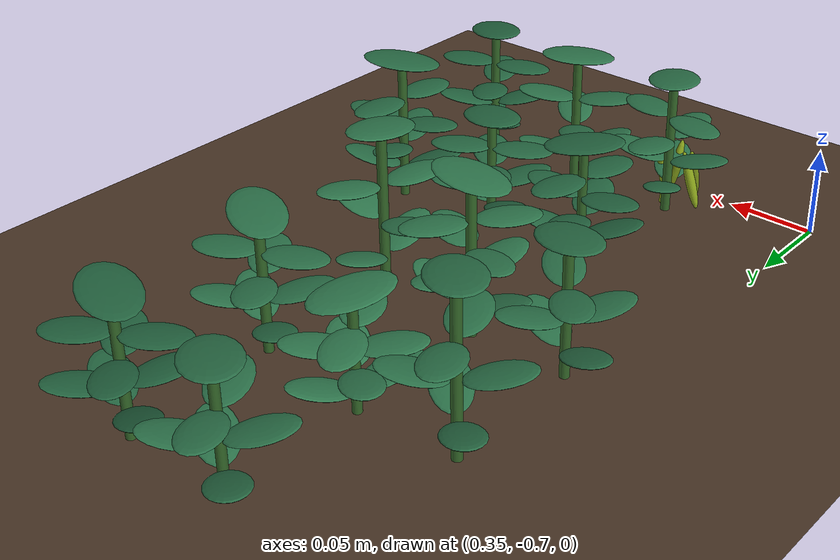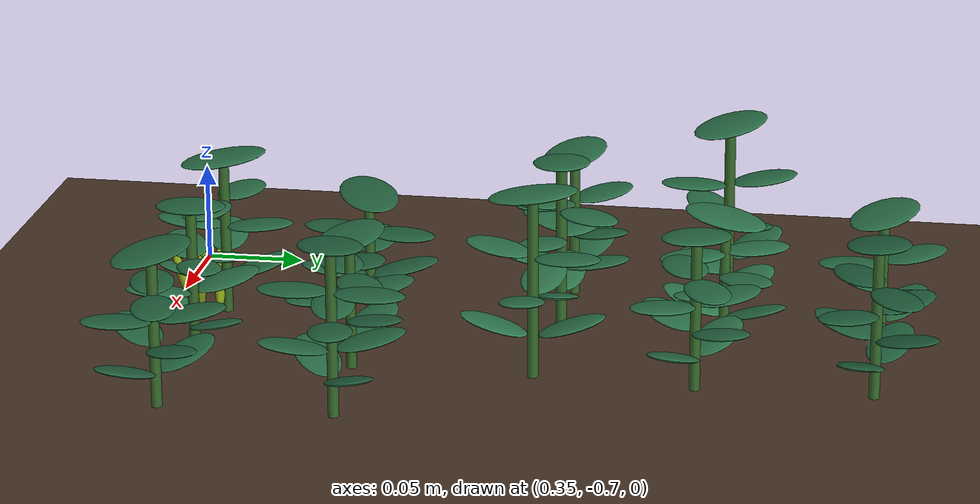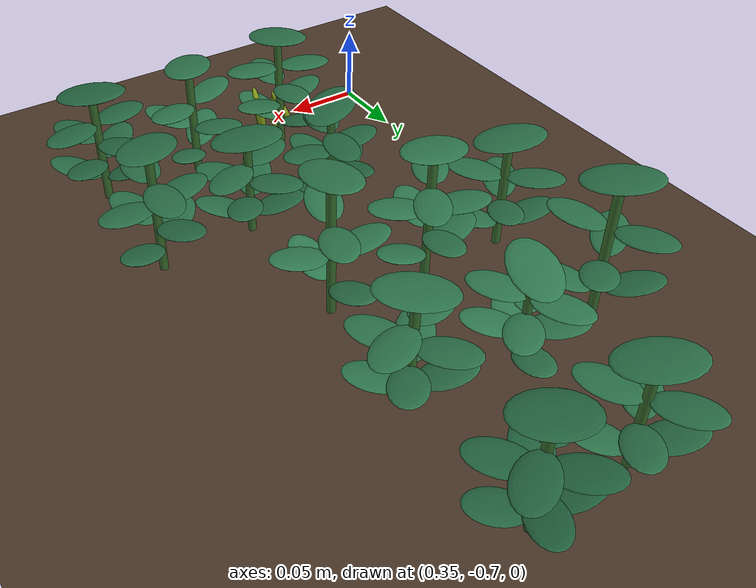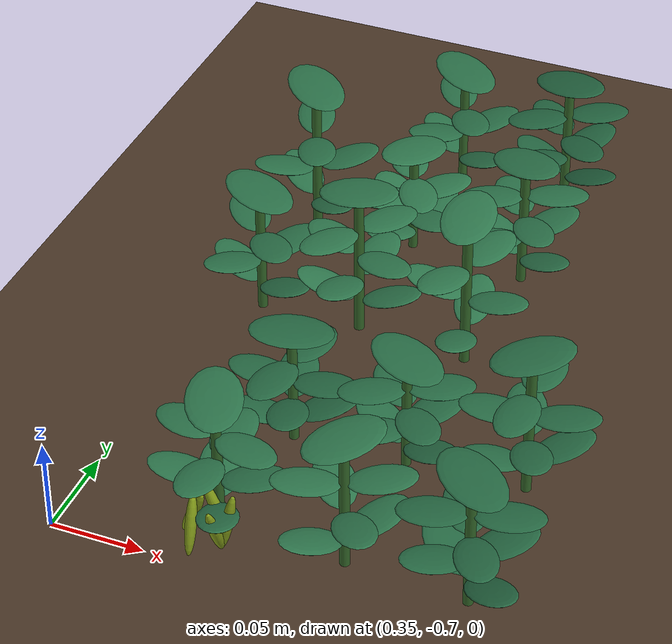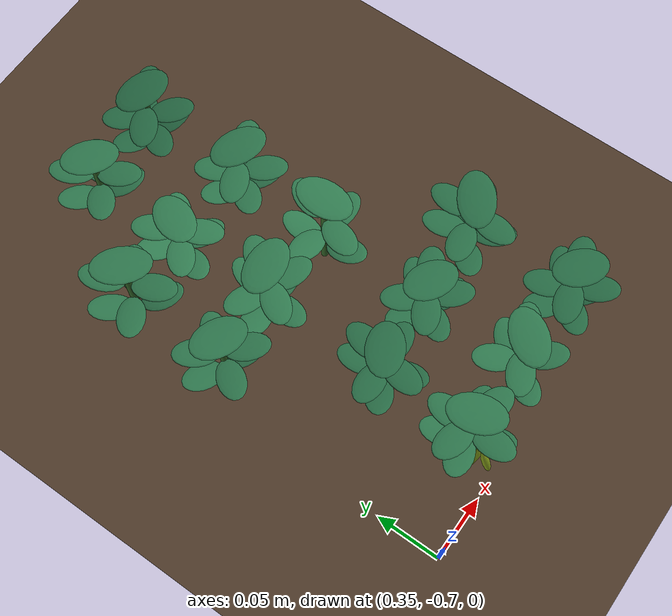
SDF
<sdf version="1.9">
 <world name="jim_field">
  <model name="ground_plane">
   <static>true</static>
   <link name="link">
    <collision name="collision">
     <geometry><plane><normal>0 0 1</normal><size>40 40</size></plane></geometry>
    </collision>
    <visual name="visual">
     <geometry><plane><normal>0 0 1</normal><size>40 40</size></plane></geometry>
     <material>
      <ambient>0.20 0.15 0.11 1</ambient>
      <diffuse>0.30 0.22 0.16 1</diffuse>
      <specular>0.01 0.01 0.01 1</specular>
     </material>
    </visual>
   </link>
  </model>
  <model name="field">
   <static>true</static>
   <pose>0.1837 -0.2516 0 0 0 0</pose>
   <model name="crop_12">
    <static>true</static>
    <pose>0.2437 -0.4192 0 0 0 0</pose>
    <link name="link">
     <visual name="stem">
      <pose>0 0 0.0385 0 0 0</pose>
      <geometry><cylinder><radius>0.0026</radius><length>0.0770</length></cylinder></geometry>
      <material>
       <ambient>0.10 0.22 0.09 1</ambient>
       <diffuse>0.20 0.40 0.16 1</diffuse>
       <specular>0.05 0.06 0.05 1</specular>
      </material>
     </visual>
     <visual name="leaflet_0_0">
      <pose>-0.0071 0.0166 0.0231 0 -0.300 1.9762</pose>
      <geometry><ellipsoid><radii>0.0170 0.0105 0.0016</radii></ellipsoid></geometry>
      <material>
       <ambient>0.090 0.233 0.136 1</ambient>
       <diffuse>0.169 0.446 0.286 1</diffuse>
       <specular>0.05 0.06 0.05 1</specular>
      </material>
     </visual>
     <visual name="leaflet_0_1">
      <pose>0.0071 -0.0166 0.0231 0 -0.300 5.1178</pose>
      <geometry><ellipsoid><radii>0.0170 0.0105 0.0016</radii></ellipsoid></geometry>
      <material>
       <ambient>0.090 0.233 0.136 1</ambient>
       <diffuse>0.169 0.446 0.286 1</diffuse>
       <specular>0.05 0.06 0.05 1</specular>
      </material>
     </visual>
     <visual name="leaflet_1_0">
      <pose>-0.0178 -0.0033 0.0350 0 -0.200 3.3262</pose>
      <geometry><ellipsoid><radii>0.0170 0.0105 0.0016</radii></ellipsoid></geometry>
      <material>
       <ambient>0.090 0.233 0.136 1</ambient>
       <diffuse>0.169 0.446 0.286 1</diffuse>
       <specular>0.05 0.06 0.05 1</specular>
      </material>
     </visual>
     <visual name="leaflet_1_1">
      <pose>0.0178 0.0033 0.0350 0 -0.200 6.4678</pose>
      <geometry><ellipsoid><radii>0.0170 0.0105 0.0016</radii></ellipsoid></geometry>
      <material>
       <ambient>0.090 0.233 0.136 1</ambient>
       <diffuse>0.169 0.446 0.286 1</diffuse>
       <specular>0.05 0.06 0.05 1</specular>
      </material>
     </visual>
     <visual name="leaflet_2_0">
      <pose>-0.0007 -0.0181 0.0470 0 -0.100 4.6762</pose>
      <geometry><ellipsoid><radii>0.0170 0.0105 0.0016</radii></ellipsoid></geometry>
      <material>
       <ambient>0.090 0.233 0.136 1</ambient>
       <diffuse>0.169 0.446 0.286 1</diffuse>
       <specular>0.05 0.06 0.05 1</specular>
      </material>
     </visual>
     <visual name="leaflet_2_1">
      <pose>0.0007 0.0181 0.0470 0 -0.100 7.8178</pose>
      <geometry><ellipsoid><radii>0.0170 0.0105 0.0016</radii></ellipsoid></geometry>
      <material>
       <ambient>0.090 0.233 0.136 1</ambient>
       <diffuse>0.169 0.446 0.286 1</diffuse>
       <specular>0.05 0.06 0.05 1</specular>
      </material>
     </visual>
     <visual name="leaflet_3_0">
      <pose>0.0175 -0.0046 0.0589 0 0.000 6.0262</pose>
      <geometry><ellipsoid><radii>0.0170 0.0105 0.0016</radii></ellipsoid></geometry>
      <material>
       <ambient>0.090 0.233 0.136 1</ambient>
       <diffuse>0.169 0.446 0.286 1</diffuse>
       <specular>0.05 0.06 0.05 1</specular>
      </material>
     </visual>
     <visual name="leaflet_3_1">
      <pose>-0.0175 0.0046 0.0589 0 0.000 9.1678</pose>
      <geometry><ellipsoid><radii>0.0170 0.0105 0.0016</radii></ellipsoid></geometry>
      <material>
       <ambient>0.090 0.233 0.136 1</ambient>
       <diffuse>0.169 0.446 0.286 1</diffuse>
       <specular>0.05 0.06 0.05 1</specular>
      </material>
     </visual>
     <visual name="leaflet_terminal">
      <pose>0 0 0.0810 0 -0.12 1.9762</pose>
      <geometry><ellipsoid><radii>0.0215 0.0140 0.0018</radii></ellipsoid></geometry>
      <material>
       <ambient>0.090 0.233 0.136 1</ambient>
       <diffuse>0.169 0.446 0.286 1</diffuse>
       <specular>0.05 0.06 0.05 1</specular>
      </material>
     </visual>
    </link>
   </model>
   <model name="crop_13">
    <static>true</static>
    <pose>0.3090 -0.4192 0 0 0 0</pose>
    <link name="link">
     <visual name="stem">
      <pose>0 0 0.0369 0 0 0</pose>
      <geometry><cylinder><radius>0.0026</radius><length>0.0738</length></cylinder></geometry>
      <material>
       <ambient>0.10 0.22 0.09 1</ambient>
       <diffuse>0.20 0.40 0.16 1</diffuse>
       <specular>0.05 0.06 0.05 1</specular>
      </material>
     </visual>
     <visual name="leaflet_0_0">
      <pose>0.0115 0.0138 0.0221 0 -0.300 0.8769</pose>
      <geometry><ellipsoid><radii>0.0170 0.0105 0.0016</radii></ellipsoid></geometry>
      <material>
       <ambient>0.092 0.237 0.140 1</ambient>
       <diffuse>0.175 0.454 0.292 1</diffuse>
       <specular>0.05 0.06 0.05 1</specular>
      </material>
     </visual>
     <visual name="leaflet_0_1">
      <pose>-0.0115 -0.0138 0.0221 0 -0.300 4.0185</pose>
      <geometry><ellipsoid><radii>0.0170 0.0105 0.0016</radii></ellipsoid></geometry>
      <material>
       <ambient>0.092 0.237 0.140 1</ambient>
       <diffuse>0.175 0.454 0.292 1</diffuse>
       <specular>0.05 0.06 0.05 1</specular>
      </material>
     </visual>
     <visual name="leaflet_1_0">
      <pose>-0.0109 0.0142 0.0374 0 -0.200 2.2269</pose>
      <geometry><ellipsoid><radii>0.0170 0.0105 0.0016</radii></ellipsoid></geometry>
      <material>
       <ambient>0.092 0.237 0.140 1</ambient>
       <diffuse>0.175 0.454 0.292 1</diffuse>
       <specular>0.05 0.06 0.05 1</specular>
      </material>
     </visual>
     <visual name="leaflet_1_1">
      <pose>0.0109 -0.0142 0.0374 0 -0.200 5.3685</pose>
      <geometry><ellipsoid><radii>0.0170 0.0105 0.0016</radii></ellipsoid></geometry>
      <material>
       <ambient>0.092 0.237 0.140 1</ambient>
       <diffuse>0.175 0.454 0.292 1</diffuse>
       <specular>0.05 0.06 0.05 1</specular>
      </material>
     </visual>
     <visual name="leaflet_2_0">
      <pose>-0.0163 -0.0076 0.0526 0 -0.100 3.5769</pose>
      <geometry><ellipsoid><radii>0.0170 0.0105 0.0016</radii></ellipsoid></geometry>
      <material>
       <ambient>0.092 0.237 0.140 1</ambient>
       <diffuse>0.175 0.454 0.292 1</diffuse>
       <specular>0.05 0.06 0.05 1</specular>
      </material>
     </visual>
     <visual name="leaflet_2_1">
      <pose>0.0163 0.0076 0.0526 0 -0.100 6.7185</pose>
      <geometry><ellipsoid><radii>0.0170 0.0105 0.0016</radii></ellipsoid></geometry>
      <material>
       <ambient>0.092 0.237 0.140 1</ambient>
       <diffuse>0.175 0.454 0.292 1</diffuse>
       <specular>0.05 0.06 0.05 1</specular>
      </material>
     </visual>
     <visual name="leaflet_terminal">
      <pose>0 0 0.0778 0 -0.12 0.8769</pose>
      <geometry><ellipsoid><radii>0.0215 0.0140 0.0018</radii></ellipsoid></geometry>
      <material>
       <ambient>0.092 0.237 0.140 1</ambient>
       <diffuse>0.175 0.454 0.292 1</diffuse>
       <specular>0.05 0.06 0.05 1</specular>
      </material>
     </visual>
    </link>
   </model>
   <model name="crop_14">
    <static>true</static>
    <pose>0.3724 -0.4215 0 0 0 0</pose>
    <link name="link">
     <visual name="stem">
      <pose>0 0 0.0364 0 0 0</pose>
      <geometry><cylinder><radius>0.0026</radius><length>0.0729</length></cylinder></geometry>
      <material>
       <ambient>0.10 0.22 0.09 1</ambient>
       <diffuse>0.20 0.40 0.16 1</diffuse>
       <specular>0.05 0.06 0.05 1</specular>
      </material>
     </visual>
     <visual name="leaflet_0_0">
      <pose>-0.0144 0.0106 0.0219 0 -0.300 2.5082</pose>
      <geometry><ellipsoid><radii>0.0170 0.0105 0.0016</radii></ellipsoid></geometry>
      <material>
       <ambient>0.077 0.211 0.119 1</ambient>
       <diffuse>0.143 0.402 0.255 1</diffuse>
       <specular>0.05 0.06 0.05 1</specular>
      </material>
     </visual>
     <visual name="leaflet_0_1">
      <pose>0.0144 -0.0106 0.0219 0 -0.300 5.6498</pose>
      <geometry><ellipsoid><radii>0.0170 0.0105 0.0016</radii></ellipsoid></geometry>
      <material>
       <ambient>0.077 0.211 0.119 1</ambient>
       <diffuse>0.143 0.402 0.255 1</diffuse>
       <specular>0.05 0.06 0.05 1</specular>
      </material>
     </visual>
     <visual name="leaflet_1_0">
      <pose>-0.0135 -0.0117 0.0331 0 -0.200 3.8582</pose>
      <geometry><ellipsoid><radii>0.0170 0.0105 0.0016</radii></ellipsoid></geometry>
      <material>
       <ambient>0.077 0.211 0.119 1</ambient>
       <diffuse>0.143 0.402 0.255 1</diffuse>
       <specular>0.05 0.06 0.05 1</specular>
      </material>
     </visual>
     <visual name="leaflet_1_1">
      <pose>0.0135 0.0117 0.0331 0 -0.200 6.9998</pose>
      <geometry><ellipsoid><radii>0.0170 0.0105 0.0016</radii></ellipsoid></geometry>
      <material>
       <ambient>0.077 0.211 0.119 1</ambient>
       <diffuse>0.143 0.402 0.255 1</diffuse>
       <specular>0.05 0.06 0.05 1</specular>
      </material>
     </visual>
     <visual name="leaflet_2_0">
      <pose>0.0085 -0.0157 0.0444 0 -0.100 5.2082</pose>
      <geometry><ellipsoid><radii>0.0170 0.0105 0.0016</radii></ellipsoid></geometry>
      <material>
       <ambient>0.077 0.211 0.119 1</ambient>
       <diffuse>0.143 0.402 0.255 1</diffuse>
       <specular>0.05 0.06 0.05 1</specular>
      </material>
     </visual>
     <visual name="leaflet_2_1">
      <pose>-0.0085 0.0157 0.0444 0 -0.100 8.3498</pose>
      <geometry><ellipsoid><radii>0.0170 0.0105 0.0016</radii></ellipsoid></geometry>
      <material>
       <ambient>0.077 0.211 0.119 1</ambient>
       <diffuse>0.143 0.402 0.255 1</diffuse>
       <specular>0.05 0.06 0.05 1</specular>
      </material>
     </visual>
     <visual name="leaflet_3_0">
      <pose>0.0172 0.0049 0.0557 0 0.000 6.5582</pose>
      <geometry><ellipsoid><radii>0.0170 0.0105 0.0016</radii></ellipsoid></geometry>
      <material>
       <ambient>0.077 0.211 0.119 1</ambient>
       <diffuse>0.143 0.402 0.255 1</diffuse>
       <specular>0.05 0.06 0.05 1</specular>
      </material>
     </visual>
     <visual name="leaflet_3_1">
      <pose>-0.0172 -0.0049 0.0557 0 0.000 9.6998</pose>
      <geometry><ellipsoid><radii>0.0170 0.0105 0.0016</radii></ellipsoid></geometry>
      <material>
       <ambient>0.077 0.211 0.119 1</ambient>
       <diffuse>0.143 0.402 0.255 1</diffuse>
       <specular>0.05 0.06 0.05 1</specular>
      </material>
     </visual>
     <visual name="leaflet_terminal">
      <pose>0 0 0.0769 0 -0.12 2.5082</pose>
      <geometry><ellipsoid><radii>0.0215 0.0140 0.0018</radii></ellipsoid></geometry>
      <material>
       <ambient>0.077 0.211 0.119 1</ambient>
       <diffuse>0.143 0.402 0.255 1</diffuse>
       <specular>0.05 0.06 0.05 1</specular>
      </material>
     </visual>
    </link>
   </model>
   <model name="crop_29">
    <static>true</static>
    <pose>0.2497 -0.3440 0 0 0 0</pose>
    <link name="link">
     <visual name="stem">
      <pose>0 0 0.0320 0 0 0</pose>
      <geometry><cylinder><radius>0.0025</radius><length>0.0640</length></cylinder></geometry>
      <material>
       <ambient>0.10 0.22 0.09 1</ambient>
       <diffuse>0.20 0.40 0.16 1</diffuse>
       <specular>0.05 0.06 0.05 1</specular>
      </material>
     </visual>
     <visual name="leaflet_0_0">
      <pose>-0.0155 -0.0080 0.0192 0 -0.300 3.6186</pose>
      <geometry><ellipsoid><radii>0.0170 0.0105 0.0016</radii></ellipsoid></geometry>
      <material>
       <ambient>0.077 0.212 0.120 1</ambient>
       <diffuse>0.145 0.404 0.257 1</diffuse>
       <specular>0.05 0.06 0.05 1</specular>
      </material>
     </visual>
     <visual name="leaflet_0_1">
      <pose>0.0155 0.0080 0.0192 0 -0.300 6.7602</pose>
      <geometry><ellipsoid><radii>0.0170 0.0105 0.0016</radii></ellipsoid></geometry>
      <material>
       <ambient>0.077 0.212 0.120 1</ambient>
       <diffuse>0.145 0.404 0.257 1</diffuse>
       <specular>0.05 0.06 0.05 1</specular>
      </material>
     </visual>
     <visual name="leaflet_1_0">
      <pose>0.0044 -0.0168 0.0291 0 -0.200 4.9686</pose>
      <geometry><ellipsoid><radii>0.0170 0.0105 0.0016</radii></ellipsoid></geometry>
      <material>
       <ambient>0.077 0.212 0.120 1</ambient>
       <diffuse>0.145 0.404 0.257 1</diffuse>
       <specular>0.05 0.06 0.05 1</specular>
      </material>
     </visual>
     <visual name="leaflet_1_1">
      <pose>-0.0044 0.0168 0.0291 0 -0.200 8.1102</pose>
      <geometry><ellipsoid><radii>0.0170 0.0105 0.0016</radii></ellipsoid></geometry>
      <material>
       <ambient>0.077 0.212 0.120 1</ambient>
       <diffuse>0.145 0.404 0.257 1</diffuse>
       <specular>0.05 0.06 0.05 1</specular>
      </material>
     </visual>
     <visual name="leaflet_2_0">
      <pose>0.0174 0.0006 0.0390 0 -0.100 6.3186</pose>
      <geometry><ellipsoid><radii>0.0170 0.0105 0.0016</radii></ellipsoid></geometry>
      <material>
       <ambient>0.077 0.212 0.120 1</ambient>
       <diffuse>0.145 0.404 0.257 1</diffuse>
       <specular>0.05 0.06 0.05 1</specular>
      </material>
     </visual>
     <visual name="leaflet_2_1">
      <pose>-0.0174 -0.0006 0.0390 0 -0.100 9.4602</pose>
      <geometry><ellipsoid><radii>0.0170 0.0105 0.0016</radii></ellipsoid></geometry>
      <material>
       <ambient>0.077 0.212 0.120 1</ambient>
       <diffuse>0.145 0.404 0.257 1</diffuse>
       <specular>0.05 0.06 0.05 1</specular>
      </material>
     </visual>
     <visual name="leaflet_3_0">
      <pose>0.0032 0.0171 0.0489 0 0.000 7.6686</pose>
      <geometry><ellipsoid><radii>0.0170 0.0105 0.0016</radii></ellipsoid></geometry>
      <material>
       <ambient>0.077 0.212 0.120 1</ambient>
       <diffuse>0.145 0.404 0.257 1</diffuse>
       <specular>0.05 0.06 0.05 1</specular>
      </material>
     </visual>
     <visual name="leaflet_3_1">
      <pose>-0.0032 -0.0171 0.0489 0 0.000 10.8102</pose>
      <geometry><ellipsoid><radii>0.0170 0.0105 0.0016</radii></ellipsoid></geometry>
      <material>
       <ambient>0.077 0.212 0.120 1</ambient>
       <diffuse>0.145 0.404 0.257 1</diffuse>
       <specular>0.05 0.06 0.05 1</specular>
      </material>
     </visual>
     <visual name="leaflet_terminal">
      <pose>0 0 0.0680 0 -0.12 3.6186</pose>
      <geometry><ellipsoid><radii>0.0215 0.0140 0.0018</radii></ellipsoid></geometry>
      <material>
       <ambient>0.077 0.212 0.120 1</ambient>
       <diffuse>0.145 0.404 0.257 1</diffuse>
       <specular>0.05 0.06 0.05 1</specular>
      </material>
     </visual>
    </link>
   </model>
   <model name="crop_30">
    <static>true</static>
    <pose>0.3097 -0.3413 0 0 0 0</pose>
    <link name="link">
     <visual name="stem">
      <pose>0 0 0.0314 0 0 0</pose>
      <geometry><cylinder><radius>0.0025</radius><length>0.0628</length></cylinder></geometry>
      <material>
       <ambient>0.10 0.22 0.09 1</ambient>
       <diffuse>0.20 0.40 0.16 1</diffuse>
       <specular>0.05 0.06 0.05 1</specular>
      </material>
     </visual>
     <visual name="leaflet_0_0">
      <pose>-0.0157 0.0073 0.0188 0 -0.300 2.7070</pose>
      <geometry><ellipsoid><radii>0.0170 0.0105 0.0016</radii></ellipsoid></geometry>
      <material>
       <ambient>0.083 0.221 0.127 1</ambient>
       <diffuse>0.155 0.422 0.270 1</diffuse>
       <specular>0.05 0.06 0.05 1</specular>
      </material>
     </visual>
     <visual name="leaflet_0_1">
      <pose>0.0157 -0.0073 0.0188 0 -0.300 5.8486</pose>
      <geometry><ellipsoid><radii>0.0170 0.0105 0.0016</radii></ellipsoid></geometry>
      <material>
       <ambient>0.083 0.221 0.127 1</ambient>
       <diffuse>0.155 0.422 0.270 1</diffuse>
       <specular>0.05 0.06 0.05 1</specular>
      </material>
     </visual>
     <visual name="leaflet_1_0">
      <pose>-0.0106 -0.0138 0.0286 0 -0.200 4.0570</pose>
      <geometry><ellipsoid><radii>0.0170 0.0105 0.0016</radii></ellipsoid></geometry>
      <material>
       <ambient>0.083 0.221 0.127 1</ambient>
       <diffuse>0.155 0.422 0.270 1</diffuse>
       <specular>0.05 0.06 0.05 1</specular>
      </material>
     </visual>
     <visual name="leaflet_1_1">
      <pose>0.0106 0.0138 0.0286 0 -0.200 7.1986</pose>
      <geometry><ellipsoid><radii>0.0170 0.0105 0.0016</radii></ellipsoid></geometry>
      <material>
       <ambient>0.083 0.221 0.127 1</ambient>
       <diffuse>0.155 0.422 0.270 1</diffuse>
       <specular>0.05 0.06 0.05 1</specular>
      </material>
     </visual>
     <visual name="leaflet_2_0">
      <pose>0.0111 -0.0133 0.0383 0 -0.100 5.4070</pose>
      <geometry><ellipsoid><radii>0.0170 0.0105 0.0016</radii></ellipsoid></geometry>
      <material>
       <ambient>0.083 0.221 0.127 1</ambient>
       <diffuse>0.155 0.422 0.270 1</diffuse>
       <specular>0.05 0.06 0.05 1</specular>
      </material>
     </visual>
     <visual name="leaflet_2_1">
      <pose>-0.0111 0.0133 0.0383 0 -0.100 8.5486</pose>
      <geometry><ellipsoid><radii>0.0170 0.0105 0.0016</radii></ellipsoid></geometry>
      <material>
       <ambient>0.083 0.221 0.127 1</ambient>
       <diffuse>0.155 0.422 0.270 1</diffuse>
       <specular>0.05 0.06 0.05 1</specular>
      </material>
     </visual>
     <visual name="leaflet_3_0">
      <pose>0.0154 0.0079 0.0481 0 0.000 6.7570</pose>
      <geometry><ellipsoid><radii>0.0170 0.0105 0.0016</radii></ellipsoid></geometry>
      <material>
       <ambient>0.083 0.221 0.127 1</ambient>
       <diffuse>0.155 0.422 0.270 1</diffuse>
       <specular>0.05 0.06 0.05 1</specular>
      </material>
     </visual>
     <visual name="leaflet_3_1">
      <pose>-0.0154 -0.0079 0.0481 0 0.000 9.8986</pose>
      <geometry><ellipsoid><radii>0.0170 0.0105 0.0016</radii></ellipsoid></geometry>
      <material>
       <ambient>0.083 0.221 0.127 1</ambient>
       <diffuse>0.155 0.422 0.270 1</diffuse>
       <specular>0.05 0.06 0.05 1</specular>
      </material>
     </visual>
     <visual name="leaflet_terminal">
      <pose>0 0 0.0668 0 -0.12 2.7070</pose>
      <geometry><ellipsoid><radii>0.0215 0.0140 0.0018</radii></ellipsoid></geometry>
      <material>
       <ambient>0.083 0.221 0.127 1</ambient>
       <diffuse>0.155 0.422 0.270 1</diffuse>
       <specular>0.05 0.06 0.05 1</specular>
      </material>
     </visual>
    </link>
   </model>
   <model name="crop_31">
    <static>true</static>
    <pose>0.3717 -0.3368 0 0 0 0</pose>
    <link name="link">
     <visual name="stem">
      <pose>0 0 0.0401 0 0 0</pose>
      <geometry><cylinder><radius>0.0026</radius><length>0.0802</length></cylinder></geometry>
      <material>
       <ambient>0.10 0.22 0.09 1</ambient>
       <diffuse>0.20 0.40 0.16 1</diffuse>
       <specular>0.05 0.06 0.05 1</specular>
      </material>
     </visual>
     <visual name="leaflet_0_0">
      <pose>0.0149 0.0106 0.0241 0 -0.300 0.6181</pose>
      <geometry><ellipsoid><radii>0.0170 0.0105 0.0016</radii></ellipsoid></geometry>
      <material>
       <ambient>0.082 0.220 0.126 1</ambient>
       <diffuse>0.154 0.420 0.268 1</diffuse>
       <specular>0.05 0.06 0.05 1</specular>
      </material>
     </visual>
     <visual name="leaflet_0_1">
      <pose>-0.0149 -0.0106 0.0241 0 -0.300 3.7597</pose>
      <geometry><ellipsoid><radii>0.0170 0.0105 0.0016</radii></ellipsoid></geometry>
      <material>
       <ambient>0.082 0.220 0.126 1</ambient>
       <diffuse>0.154 0.420 0.268 1</diffuse>
       <specular>0.05 0.06 0.05 1</specular>
      </material>
     </visual>
     <visual name="leaflet_1_0">
      <pose>-0.0071 0.0169 0.0365 0 -0.200 1.9681</pose>
      <geometry><ellipsoid><radii>0.0170 0.0105 0.0016</radii></ellipsoid></geometry>
      <material>
       <ambient>0.082 0.220 0.126 1</ambient>
       <diffuse>0.154 0.420 0.268 1</diffuse>
       <specular>0.05 0.06 0.05 1</specular>
      </material>
     </visual>
     <visual name="leaflet_1_1">
      <pose>0.0071 -0.0169 0.0365 0 -0.200 5.1097</pose>
      <geometry><ellipsoid><radii>0.0170 0.0105 0.0016</radii></ellipsoid></geometry>
      <material>
       <ambient>0.082 0.220 0.126 1</ambient>
       <diffuse>0.154 0.420 0.268 1</diffuse>
       <specular>0.05 0.06 0.05 1</specular>
      </material>
     </visual>
     <visual name="leaflet_2_0">
      <pose>-0.0180 -0.0032 0.0489 0 -0.100 3.3181</pose>
      <geometry><ellipsoid><radii>0.0170 0.0105 0.0016</radii></ellipsoid></geometry>
      <material>
       <ambient>0.082 0.220 0.126 1</ambient>
       <diffuse>0.154 0.420 0.268 1</diffuse>
       <specular>0.05 0.06 0.05 1</specular>
      </material>
     </visual>
     <visual name="leaflet_2_1">
      <pose>0.0180 0.0032 0.0489 0 -0.100 6.4597</pose>
      <geometry><ellipsoid><radii>0.0170 0.0105 0.0016</radii></ellipsoid></geometry>
      <material>
       <ambient>0.082 0.220 0.126 1</ambient>
       <diffuse>0.154 0.420 0.268 1</diffuse>
       <specular>0.05 0.06 0.05 1</specular>
      </material>
     </visual>
     <visual name="leaflet_3_0">
      <pose>-0.0008 -0.0183 0.0614 0 0.000 4.6681</pose>
      <geometry><ellipsoid><radii>0.0170 0.0105 0.0016</radii></ellipsoid></geometry>
      <material>
       <ambient>0.082 0.220 0.126 1</ambient>
       <diffuse>0.154 0.420 0.268 1</diffuse>
       <specular>0.05 0.06 0.05 1</specular>
      </material>
     </visual>
     <visual name="leaflet_3_1">
      <pose>0.0008 0.0183 0.0614 0 0.000 7.8097</pose>
      <geometry><ellipsoid><radii>0.0170 0.0105 0.0016</radii></ellipsoid></geometry>
      <material>
       <ambient>0.082 0.220 0.126 1</ambient>
       <diffuse>0.154 0.420 0.268 1</diffuse>
       <specular>0.05 0.06 0.05 1</specular>
      </material>
     </visual>
     <visual name="leaflet_terminal">
      <pose>0 0 0.0842 0 -0.12 0.6181</pose>
      <geometry><ellipsoid><radii>0.0215 0.0140 0.0018</radii></ellipsoid></geometry>
      <material>
       <ambient>0.082 0.220 0.126 1</ambient>
       <diffuse>0.154 0.420 0.268 1</diffuse>
       <specular>0.05 0.06 0.05 1</specular>
      </material>
     </visual>
    </link>
   </model>
   <model name="crop_45">
    <static>true</static>
    <pose>0.1898 -0.2497 0 0 0 0</pose>
    <link name="link">
     <visual name="stem">
      <pose>0 0 0.0355 0 0 0</pose>
      <geometry><cylinder><radius>0.0026</radius><length>0.0711</length></cylinder></geometry>
      <material>
       <ambient>0.10 0.22 0.09 1</ambient>
       <diffuse>0.20 0.40 0.16 1</diffuse>
       <specular>0.05 0.06 0.05 1</specular>
      </material>
     </visual>
     <visual name="leaflet_0_0">
      <pose>-0.0165 0.0068 0.0213 0 -0.300 2.7518</pose>
      <geometry><ellipsoid><radii>0.0170 0.0105 0.0016</radii></ellipsoid></geometry>
      <material>
       <ambient>0.086 0.227 0.132 1</ambient>
       <diffuse>0.163 0.434 0.278 1</diffuse>
       <specular>0.05 0.06 0.05 1</specular>
      </material>
     </visual>
     <visual name="leaflet_0_1">
      <pose>0.0165 -0.0068 0.0213 0 -0.300 5.8934</pose>
      <geometry><ellipsoid><radii>0.0170 0.0105 0.0016</radii></ellipsoid></geometry>
      <material>
       <ambient>0.086 0.227 0.132 1</ambient>
       <diffuse>0.163 0.434 0.278 1</diffuse>
       <specular>0.05 0.06 0.05 1</specular>
      </material>
     </visual>
     <visual name="leaflet_1_0">
      <pose>-0.0102 -0.0146 0.0360 0 -0.200 4.1018</pose>
      <geometry><ellipsoid><radii>0.0170 0.0105 0.0016</radii></ellipsoid></geometry>
      <material>
       <ambient>0.086 0.227 0.132 1</ambient>
       <diffuse>0.163 0.434 0.278 1</diffuse>
       <specular>0.05 0.06 0.05 1</specular>
      </material>
     </visual>
     <visual name="leaflet_1_1">
      <pose>0.0102 0.0146 0.0360 0 -0.200 7.2434</pose>
      <geometry><ellipsoid><radii>0.0170 0.0105 0.0016</radii></ellipsoid></geometry>
      <material>
       <ambient>0.086 0.227 0.132 1</ambient>
       <diffuse>0.163 0.434 0.278 1</diffuse>
       <specular>0.05 0.06 0.05 1</specular>
      </material>
     </visual>
     <visual name="leaflet_2_0">
      <pose>0.0120 -0.0131 0.0507 0 -0.100 5.4518</pose>
      <geometry><ellipsoid><radii>0.0170 0.0105 0.0016</radii></ellipsoid></geometry>
      <material>
       <ambient>0.086 0.227 0.132 1</ambient>
       <diffuse>0.163 0.434 0.278 1</diffuse>
       <specular>0.05 0.06 0.05 1</specular>
      </material>
     </visual>
     <visual name="leaflet_2_1">
      <pose>-0.0120 0.0131 0.0507 0 -0.100 8.5934</pose>
      <geometry><ellipsoid><radii>0.0170 0.0105 0.0016</radii></ellipsoid></geometry>
      <material>
       <ambient>0.086 0.227 0.132 1</ambient>
       <diffuse>0.163 0.434 0.278 1</diffuse>
       <specular>0.05 0.06 0.05 1</specular>
      </material>
     </visual>
     <visual name="leaflet_terminal">
      <pose>0 0 0.0751 0 -0.12 2.7518</pose>
      <geometry><ellipsoid><radii>0.0215 0.0140 0.0018</radii></ellipsoid></geometry>
      <material>
       <ambient>0.086 0.227 0.132 1</ambient>
       <diffuse>0.163 0.434 0.278 1</diffuse>
       <specular>0.05 0.06 0.05 1</specular>
      </material>
     </visual>
    </link>
   </model>
   <model name="crop_46">
    <static>true</static>
    <pose>0.2460 -0.2482 0 0 0 0</pose>
    <link name="link">
     <visual name="stem">
      <pose>0 0 0.0421 0 0 0</pose>
      <geometry><cylinder><radius>0.0027</radius><length>0.0842</length></cylinder></geometry>
      <material>
       <ambient>0.10 0.22 0.09 1</ambient>
       <diffuse>0.20 0.40 0.16 1</diffuse>
       <specular>0.05 0.06 0.05 1</specular>
      </material>
     </visual>
     <visual name="leaflet_0_0">
      <pose>0.0185 0.0009 0.0253 0 -0.300 0.0491</pose>
      <geometry><ellipsoid><radii>0.0170 0.0105 0.0016</radii></ellipsoid></geometry>
      <material>
       <ambient>0.095 0.241 0.143 1</ambient>
       <diffuse>0.179 0.462 0.297 1</diffuse>
       <specular>0.05 0.06 0.05 1</specular>
      </material>
     </visual>
     <visual name="leaflet_0_1">
      <pose>-0.0185 -0.0009 0.0253 0 -0.300 3.1907</pose>
      <geometry><ellipsoid><radii>0.0170 0.0105 0.0016</radii></ellipsoid></geometry>
      <material>
       <ambient>0.095 0.241 0.143 1</ambient>
       <diffuse>0.179 0.462 0.297 1</diffuse>
       <specular>0.05 0.06 0.05 1</specular>
      </material>
     </visual>
     <visual name="leaflet_1_0">
      <pose>0.0032 0.0182 0.0383 0 -0.200 1.3991</pose>
      <geometry><ellipsoid><radii>0.0170 0.0105 0.0016</radii></ellipsoid></geometry>
      <material>
       <ambient>0.095 0.241 0.143 1</ambient>
       <diffuse>0.179 0.462 0.297 1</diffuse>
       <specular>0.05 0.06 0.05 1</specular>
      </material>
     </visual>
     <visual name="leaflet_1_1">
      <pose>-0.0032 -0.0182 0.0383 0 -0.200 4.5407</pose>
      <geometry><ellipsoid><radii>0.0170 0.0105 0.0016</radii></ellipsoid></geometry>
      <material>
       <ambient>0.095 0.241 0.143 1</ambient>
       <diffuse>0.179 0.462 0.297 1</diffuse>
       <specular>0.05 0.06 0.05 1</specular>
      </material>
     </visual>
     <visual name="leaflet_2_0">
      <pose>-0.0171 0.0071 0.0514 0 -0.100 2.7491</pose>
      <geometry><ellipsoid><radii>0.0170 0.0105 0.0016</radii></ellipsoid></geometry>
      <material>
       <ambient>0.095 0.241 0.143 1</ambient>
       <diffuse>0.179 0.462 0.297 1</diffuse>
       <specular>0.05 0.06 0.05 1</specular>
      </material>
     </visual>
     <visual name="leaflet_2_1">
      <pose>0.0171 -0.0071 0.0514 0 -0.100 5.8907</pose>
      <geometry><ellipsoid><radii>0.0170 0.0105 0.0016</radii></ellipsoid></geometry>
      <material>
       <ambient>0.095 0.241 0.143 1</ambient>
       <diffuse>0.179 0.462 0.297 1</diffuse>
       <specular>0.05 0.06 0.05 1</specular>
      </material>
     </visual>
     <visual name="leaflet_3_0">
      <pose>-0.0106 -0.0151 0.0644 0 0.000 4.0991</pose>
      <geometry><ellipsoid><radii>0.0170 0.0105 0.0016</radii></ellipsoid></geometry>
      <material>
       <ambient>0.095 0.241 0.143 1</ambient>
       <diffuse>0.179 0.462 0.297 1</diffuse>
       <specular>0.05 0.06 0.05 1</specular>
      </material>
     </visual>
     <visual name="leaflet_3_1">
      <pose>0.0106 0.0151 0.0644 0 0.000 7.2407</pose>
      <geometry><ellipsoid><radii>0.0170 0.0105 0.0016</radii></ellipsoid></geometry>
      <material>
       <ambient>0.095 0.241 0.143 1</ambient>
       <diffuse>0.179 0.462 0.297 1</diffuse>
       <specular>0.05 0.06 0.05 1</specular>
      </material>
     </visual>
     <visual name="leaflet_terminal">
      <pose>0 0 0.0882 0 -0.12 0.0491</pose>
      <geometry><ellipsoid><radii>0.0215 0.0140 0.0018</radii></ellipsoid></geometry>
      <material>
       <ambient>0.095 0.241 0.143 1</ambient>
       <diffuse>0.179 0.462 0.297 1</diffuse>
       <specular>0.05 0.06 0.05 1</specular>
      </material>
     </visual>
    </link>
   </model>
   <model name="crop_47">
    <static>true</static>
    <pose>0.3080 -0.2527 0 0 0 0</pose>
    <link name="link">
     <visual name="stem">
      <pose>0 0 0.0441 0 0 0</pose>
      <geometry><cylinder><radius>0.0027</radius><length>0.0882</length></cylinder></geometry>
      <material>
       <ambient>0.10 0.22 0.09 1</ambient>
       <diffuse>0.20 0.40 0.16 1</diffuse>
       <specular>0.05 0.06 0.05 1</specular>
      </material>
     </visual>
     <visual name="leaflet_0_0">
      <pose>-0.0017 0.0186 0.0265 0 -0.300 1.6608</pose>
      <geometry><ellipsoid><radii>0.0170 0.0105 0.0016</radii></ellipsoid></geometry>
      <material>
       <ambient>0.097 0.244 0.146 1</ambient>
       <diffuse>0.183 0.469 0.302 1</diffuse>
       <specular>0.05 0.06 0.05 1</specular>
      </material>
     </visual>
     <visual name="leaflet_0_1">
      <pose>0.0017 -0.0186 0.0265 0 -0.300 4.8024</pose>
      <geometry><ellipsoid><radii>0.0170 0.0105 0.0016</radii></ellipsoid></geometry>
      <material>
       <ambient>0.097 0.244 0.146 1</ambient>
       <diffuse>0.183 0.469 0.302 1</diffuse>
       <specular>0.05 0.06 0.05 1</specular>
      </material>
     </visual>
     <visual name="leaflet_1_0">
      <pose>-0.0185 0.0024 0.0447 0 -0.200 3.0108</pose>
      <geometry><ellipsoid><radii>0.0170 0.0105 0.0016</radii></ellipsoid></geometry>
      <material>
       <ambient>0.097 0.244 0.146 1</ambient>
       <diffuse>0.183 0.469 0.302 1</diffuse>
       <specular>0.05 0.06 0.05 1</specular>
      </material>
     </visual>
     <visual name="leaflet_1_1">
      <pose>0.0185 -0.0024 0.0447 0 -0.200 6.1524</pose>
      <geometry><ellipsoid><radii>0.0170 0.0105 0.0016</radii></ellipsoid></geometry>
      <material>
       <ambient>0.097 0.244 0.146 1</ambient>
       <diffuse>0.183 0.469 0.302 1</diffuse>
       <specular>0.05 0.06 0.05 1</specular>
      </material>
     </visual>
     <visual name="leaflet_2_0">
      <pose>-0.0064 -0.0176 0.0629 0 -0.100 4.3608</pose>
      <geometry><ellipsoid><radii>0.0170 0.0105 0.0016</radii></ellipsoid></geometry>
      <material>
       <ambient>0.097 0.244 0.146 1</ambient>
       <diffuse>0.183 0.469 0.302 1</diffuse>
       <specular>0.05 0.06 0.05 1</specular>
      </material>
     </visual>
     <visual name="leaflet_2_1">
      <pose>0.0064 0.0176 0.0629 0 -0.100 7.5024</pose>
      <geometry><ellipsoid><radii>0.0170 0.0105 0.0016</radii></ellipsoid></geometry>
      <material>
       <ambient>0.097 0.244 0.146 1</ambient>
       <diffuse>0.183 0.469 0.302 1</diffuse>
       <specular>0.05 0.06 0.05 1</specular>
      </material>
     </visual>
     <visual name="leaflet_terminal">
      <pose>0 0 0.0922 0 -0.12 1.6608</pose>
      <geometry><ellipsoid><radii>0.0215 0.0140 0.0018</radii></ellipsoid></geometry>
      <material>
       <ambient>0.097 0.244 0.146 1</ambient>
       <diffuse>0.183 0.469 0.302 1</diffuse>
       <specular>0.05 0.06 0.05 1</specular>
      </material>
     </visual>
    </link>
   </model>
   <model name="crop_62">
    <static>true</static>
    <pose>0.1889 -0.1709 0 0 0 0</pose>
    <link name="link">
     <visual name="stem">
      <pose>0 0 0.0448 0 0 0</pose>
      <geometry><cylinder><radius>0.0027</radius><length>0.0895</length></cylinder></geometry>
      <material>
       <ambient>0.10 0.22 0.09 1</ambient>
       <diffuse>0.20 0.40 0.16 1</diffuse>
       <specular>0.05 0.06 0.05 1</specular>
      </material>
     </visual>
     <visual name="leaflet_0_0">
      <pose>-0.0141 0.0124 0.0269 0 -0.300 2.4190</pose>
      <geometry><ellipsoid><radii>0.0170 0.0105 0.0016</radii></ellipsoid></geometry>
      <material>
       <ambient>0.087 0.229 0.133 1</ambient>
       <diffuse>0.165 0.438 0.280 1</diffuse>
       <specular>0.05 0.06 0.05 1</specular>
      </material>
     </visual>
     <visual name="leaflet_0_1">
      <pose>0.0141 -0.0124 0.0269 0 -0.300 5.5606</pose>
      <geometry><ellipsoid><radii>0.0170 0.0105 0.0016</radii></ellipsoid></geometry>
      <material>
       <ambient>0.087 0.229 0.133 1</ambient>
       <diffuse>0.165 0.438 0.280 1</diffuse>
       <specular>0.05 0.06 0.05 1</specular>
      </material>
     </visual>
     <visual name="leaflet_1_0">
      <pose>-0.0152 -0.0110 0.0454 0 -0.200 3.7690</pose>
      <geometry><ellipsoid><radii>0.0170 0.0105 0.0016</radii></ellipsoid></geometry>
      <material>
       <ambient>0.087 0.229 0.133 1</ambient>
       <diffuse>0.165 0.438 0.280 1</diffuse>
       <specular>0.05 0.06 0.05 1</specular>
      </material>
     </visual>
     <visual name="leaflet_1_1">
      <pose>0.0152 0.0110 0.0454 0 -0.200 6.9106</pose>
      <geometry><ellipsoid><radii>0.0170 0.0105 0.0016</radii></ellipsoid></geometry>
      <material>
       <ambient>0.087 0.229 0.133 1</ambient>
       <diffuse>0.165 0.438 0.280 1</diffuse>
       <specular>0.05 0.06 0.05 1</specular>
      </material>
     </visual>
     <visual name="leaflet_2_0">
      <pose>0.0074 -0.0172 0.0639 0 -0.100 5.1190</pose>
      <geometry><ellipsoid><radii>0.0170 0.0105 0.0016</radii></ellipsoid></geometry>
      <material>
       <ambient>0.087 0.229 0.133 1</ambient>
       <diffuse>0.165 0.438 0.280 1</diffuse>
       <specular>0.05 0.06 0.05 1</specular>
      </material>
     </visual>
     <visual name="leaflet_2_1">
      <pose>-0.0074 0.0172 0.0639 0 -0.100 8.2606</pose>
      <geometry><ellipsoid><radii>0.0170 0.0105 0.0016</radii></ellipsoid></geometry>
      <material>
       <ambient>0.087 0.229 0.133 1</ambient>
       <diffuse>0.165 0.438 0.280 1</diffuse>
       <specular>0.05 0.06 0.05 1</specular>
      </material>
     </visual>
     <visual name="leaflet_terminal">
      <pose>0 0 0.0935 0 -0.12 2.4190</pose>
      <geometry><ellipsoid><radii>0.0215 0.0140 0.0018</radii></ellipsoid></geometry>
      <material>
       <ambient>0.087 0.229 0.133 1</ambient>
       <diffuse>0.165 0.438 0.280 1</diffuse>
       <specular>0.05 0.06 0.05 1</specular>
      </material>
     </visual>
    </link>
   </model>
   <model name="crop_63">
    <static>true</static>
    <pose>0.2455 -0.1671 0 0 0 0</pose>
    <link name="link">
     <visual name="stem">
      <pose>0 0 0.0300 0 0 0</pose>
      <geometry><cylinder><radius>0.0025</radius><length>0.0601</length></cylinder></geometry>
      <material>
       <ambient>0.10 0.22 0.09 1</ambient>
       <diffuse>0.20 0.40 0.16 1</diffuse>
       <specular>0.05 0.06 0.05 1</specular>
      </material>
     </visual>
     <visual name="leaflet_0_0">
      <pose>-0.0067 -0.0159 0.0180 0 -0.300 4.3135</pose>
      <geometry><ellipsoid><radii>0.0170 0.0105 0.0016</radii></ellipsoid></geometry>
      <material>
       <ambient>0.098 0.247 0.148 1</ambient>
       <diffuse>0.186 0.474 0.306 1</diffuse>
       <specular>0.05 0.06 0.05 1</specular>
      </material>
     </visual>
     <visual name="leaflet_0_1">
      <pose>0.0067 0.0159 0.0180 0 -0.300 7.4551</pose>
      <geometry><ellipsoid><radii>0.0170 0.0105 0.0016</radii></ellipsoid></geometry>
      <material>
       <ambient>0.098 0.247 0.148 1</ambient>
       <diffuse>0.186 0.474 0.306 1</diffuse>
       <specular>0.05 0.06 0.05 1</specular>
      </material>
     </visual>
     <visual name="leaflet_1_0">
      <pose>0.0140 -0.0100 0.0273 0 -0.200 5.6635</pose>
      <geometry><ellipsoid><radii>0.0170 0.0105 0.0016</radii></ellipsoid></geometry>
      <material>
       <ambient>0.098 0.247 0.148 1</ambient>
       <diffuse>0.186 0.474 0.306 1</diffuse>
       <specular>0.05 0.06 0.05 1</specular>
      </material>
     </visual>
     <visual name="leaflet_1_1">
      <pose>-0.0140 0.0100 0.0273 0 -0.200 8.8051</pose>
      <geometry><ellipsoid><radii>0.0170 0.0105 0.0016</radii></ellipsoid></geometry>
      <material>
       <ambient>0.098 0.247 0.148 1</ambient>
       <diffuse>0.186 0.474 0.306 1</diffuse>
       <specular>0.05 0.06 0.05 1</specular>
      </material>
     </visual>
     <visual name="leaflet_2_0">
      <pose>0.0128 0.0115 0.0366 0 -0.100 7.0135</pose>
      <geometry><ellipsoid><radii>0.0170 0.0105 0.0016</radii></ellipsoid></geometry>
      <material>
       <ambient>0.098 0.247 0.148 1</ambient>
       <diffuse>0.186 0.474 0.306 1</diffuse>
       <specular>0.05 0.06 0.05 1</specular>
      </material>
     </visual>
     <visual name="leaflet_2_1">
      <pose>-0.0128 -0.0115 0.0366 0 -0.100 10.1551</pose>
      <geometry><ellipsoid><radii>0.0170 0.0105 0.0016</radii></ellipsoid></geometry>
      <material>
       <ambient>0.098 0.247 0.148 1</ambient>
       <diffuse>0.186 0.474 0.306 1</diffuse>
       <specular>0.05 0.06 0.05 1</specular>
      </material>
     </visual>
     <visual name="leaflet_3_0">
      <pose>-0.0084 0.0150 0.0459 0 0.000 8.3635</pose>
      <geometry><ellipsoid><radii>0.0170 0.0105 0.0016</radii></ellipsoid></geometry>
      <material>
       <ambient>0.098 0.247 0.148 1</ambient>
       <diffuse>0.186 0.474 0.306 1</diffuse>
       <specular>0.05 0.06 0.05 1</specular>
      </material>
     </visual>
     <visual name="leaflet_3_1">
      <pose>0.0084 -0.0150 0.0459 0 0.000 11.5051</pose>
      <geometry><ellipsoid><radii>0.0170 0.0105 0.0016</radii></ellipsoid></geometry>
      <material>
       <ambient>0.098 0.247 0.148 1</ambient>
       <diffuse>0.186 0.474 0.306 1</diffuse>
       <specular>0.05 0.06 0.05 1</specular>
      </material>
     </visual>
     <visual name="leaflet_terminal">
      <pose>0 0 0.0641 0 -0.12 4.3135</pose>
      <geometry><ellipsoid><radii>0.0215 0.0140 0.0018</radii></ellipsoid></geometry>
      <material>
       <ambient>0.098 0.247 0.148 1</ambient>
       <diffuse>0.186 0.474 0.306 1</diffuse>
       <specular>0.05 0.06 0.05 1</specular>
      </material>
     </visual>
    </link>
   </model>
   <model name="crop_64">
    <static>true</static>
    <pose>0.3124 -0.1742 0 0 0 0</pose>
    <link name="link">
     <visual name="stem">
      <pose>0 0 0.0365 0 0 0</pose>
      <geometry><cylinder><radius>0.0026</radius><length>0.0729</length></cylinder></geometry>
      <material>
       <ambient>0.10 0.22 0.09 1</ambient>
       <diffuse>0.20 0.40 0.16 1</diffuse>
       <specular>0.05 0.06 0.05 1</specular>
      </material>
     </visual>
     <visual name="leaflet_0_0">
      <pose>0.0157 -0.0086 0.0219 0 -0.300 5.7824</pose>
      <geometry><ellipsoid><radii>0.0170 0.0105 0.0016</radii></ellipsoid></geometry>
      <material>
       <ambient>0.089 0.231 0.135 1</ambient>
       <diffuse>0.167 0.442 0.284 1</diffuse>
       <specular>0.05 0.06 0.05 1</specular>
      </material>
     </visual>
     <visual name="leaflet_0_1">
      <pose>-0.0157 0.0086 0.0219 0 -0.300 8.9240</pose>
      <geometry><ellipsoid><radii>0.0170 0.0105 0.0016</radii></ellipsoid></geometry>
      <material>
       <ambient>0.089 0.231 0.135 1</ambient>
       <diffuse>0.167 0.442 0.284 1</diffuse>
       <specular>0.05 0.06 0.05 1</specular>
      </material>
     </visual>
     <visual name="leaflet_1_0">
      <pose>0.0118 0.0134 0.0332 0 -0.200 7.1324</pose>
      <geometry><ellipsoid><radii>0.0170 0.0105 0.0016</radii></ellipsoid></geometry>
      <material>
       <ambient>0.089 0.231 0.135 1</ambient>
       <diffuse>0.167 0.442 0.284 1</diffuse>
       <specular>0.05 0.06 0.05 1</specular>
      </material>
     </visual>
     <visual name="leaflet_1_1">
      <pose>-0.0118 -0.0134 0.0332 0 -0.200 10.2740</pose>
      <geometry><ellipsoid><radii>0.0170 0.0105 0.0016</radii></ellipsoid></geometry>
      <material>
       <ambient>0.089 0.231 0.135 1</ambient>
       <diffuse>0.167 0.442 0.284 1</diffuse>
       <specular>0.05 0.06 0.05 1</specular>
      </material>
     </visual>
     <visual name="leaflet_2_0">
      <pose>-0.0105 0.0145 0.0445 0 -0.100 8.4824</pose>
      <geometry><ellipsoid><radii>0.0170 0.0105 0.0016</radii></ellipsoid></geometry>
      <material>
       <ambient>0.089 0.231 0.135 1</ambient>
       <diffuse>0.167 0.442 0.284 1</diffuse>
       <specular>0.05 0.06 0.05 1</specular>
      </material>
     </visual>
     <visual name="leaflet_2_1">
      <pose>0.0105 -0.0145 0.0445 0 -0.100 11.6240</pose>
      <geometry><ellipsoid><radii>0.0170 0.0105 0.0016</radii></ellipsoid></geometry>
      <material>
       <ambient>0.089 0.231 0.135 1</ambient>
       <diffuse>0.167 0.442 0.284 1</diffuse>
       <specular>0.05 0.06 0.05 1</specular>
      </material>
     </visual>
     <visual name="leaflet_3_0">
      <pose>-0.0164 -0.0071 0.0558 0 0.000 9.8324</pose>
      <geometry><ellipsoid><radii>0.0170 0.0105 0.0016</radii></ellipsoid></geometry>
      <material>
       <ambient>0.089 0.231 0.135 1</ambient>
       <diffuse>0.167 0.442 0.284 1</diffuse>
       <specular>0.05 0.06 0.05 1</specular>
      </material>
     </visual>
     <visual name="leaflet_3_1">
      <pose>0.0164 0.0071 0.0558 0 0.000 12.9740</pose>
      <geometry><ellipsoid><radii>0.0170 0.0105 0.0016</radii></ellipsoid></geometry>
      <material>
       <ambient>0.089 0.231 0.135 1</ambient>
       <diffuse>0.167 0.442 0.284 1</diffuse>
       <specular>0.05 0.06 0.05 1</specular>
      </material>
     </visual>
     <visual name="leaflet_terminal">
      <pose>0 0 0.0769 0 -0.12 5.7824</pose>
      <geometry><ellipsoid><radii>0.0215 0.0140 0.0018</radii></ellipsoid></geometry>
      <material>
       <ambient>0.089 0.231 0.135 1</ambient>
       <diffuse>0.167 0.442 0.284 1</diffuse>
       <specular>0.05 0.06 0.05 1</specular>
      </material>
     </visual>
    </link>
   </model>
   <model name="crop_80">
    <static>true</static>
    <pose>0.2468 -0.0899 0 0 0 0</pose>
    <link name="link">
     <visual name="stem">
      <pose>0 0 0.0332 0 0 0</pose>
      <geometry><cylinder><radius>0.0025</radius><length>0.0664</length></cylinder></geometry>
      <material>
       <ambient>0.10 0.22 0.09 1</ambient>
       <diffuse>0.20 0.40 0.16 1</diffuse>
       <specular>0.05 0.06 0.05 1</specular>
      </material>
     </visual>
     <visual name="leaflet_0_0">
      <pose>-0.0147 0.0096 0.0199 0 -0.300 2.5597</pose>
      <geometry><ellipsoid><radii>0.0170 0.0105 0.0016</radii></ellipsoid></geometry>
      <material>
       <ambient>0.086 0.227 0.132 1</ambient>
       <diffuse>0.163 0.434 0.278 1</diffuse>
       <specular>0.05 0.06 0.05 1</specular>
      </material>
     </visual>
     <visual name="leaflet_0_1">
      <pose>0.0147 -0.0096 0.0199 0 -0.300 5.7013</pose>
      <geometry><ellipsoid><radii>0.0170 0.0105 0.0016</radii></ellipsoid></geometry>
      <material>
       <ambient>0.086 0.227 0.132 1</ambient>
       <diffuse>0.163 0.434 0.278 1</diffuse>
       <specular>0.05 0.06 0.05 1</specular>
      </material>
     </visual>
     <visual name="leaflet_1_0">
      <pose>-0.0126 -0.0122 0.0337 0 -0.200 3.9097</pose>
      <geometry><ellipsoid><radii>0.0170 0.0105 0.0016</radii></ellipsoid></geometry>
      <material>
       <ambient>0.086 0.227 0.132 1</ambient>
       <diffuse>0.163 0.434 0.278 1</diffuse>
       <specular>0.05 0.06 0.05 1</specular>
      </material>
     </visual>
     <visual name="leaflet_1_1">
      <pose>0.0126 0.0122 0.0337 0 -0.200 7.0513</pose>
      <geometry><ellipsoid><radii>0.0170 0.0105 0.0016</radii></ellipsoid></geometry>
      <material>
       <ambient>0.086 0.227 0.132 1</ambient>
       <diffuse>0.163 0.434 0.278 1</diffuse>
       <specular>0.05 0.06 0.05 1</specular>
      </material>
     </visual>
     <visual name="leaflet_2_0">
      <pose>0.0091 -0.0150 0.0474 0 -0.100 5.2597</pose>
      <geometry><ellipsoid><radii>0.0170 0.0105 0.0016</radii></ellipsoid></geometry>
      <material>
       <ambient>0.086 0.227 0.132 1</ambient>
       <diffuse>0.163 0.434 0.278 1</diffuse>
       <specular>0.05 0.06 0.05 1</specular>
      </material>
     </visual>
     <visual name="leaflet_2_1">
      <pose>-0.0091 0.0150 0.0474 0 -0.100 8.4013</pose>
      <geometry><ellipsoid><radii>0.0170 0.0105 0.0016</radii></ellipsoid></geometry>
      <material>
       <ambient>0.086 0.227 0.132 1</ambient>
       <diffuse>0.163 0.434 0.278 1</diffuse>
       <specular>0.05 0.06 0.05 1</specular>
      </material>
     </visual>
     <visual name="leaflet_terminal">
      <pose>0 0 0.0704 0 -0.12 2.5597</pose>
      <geometry><ellipsoid><radii>0.0215 0.0140 0.0018</radii></ellipsoid></geometry>
      <material>
       <ambient>0.086 0.227 0.132 1</ambient>
       <diffuse>0.163 0.434 0.278 1</diffuse>
       <specular>0.05 0.06 0.05 1</specular>
      </material>
     </visual>
    </link>
   </model>
   <model name="crop_81">
    <static>true</static>
    <pose>0.3092 -0.0891 0 0 0 0</pose>
    <link name="link">
     <visual name="stem">
      <pose>0 0 0.0363 0 0 0</pose>
      <geometry><cylinder><radius>0.0026</radius><length>0.0726</length></cylinder></geometry>
      <material>
       <ambient>0.10 0.22 0.09 1</ambient>
       <diffuse>0.20 0.40 0.16 1</diffuse>
       <specular>0.05 0.06 0.05 1</specular>
      </material>
     </visual>
     <visual name="leaflet_0_0">
      <pose>0.0168 -0.0060 0.0218 0 -0.300 5.9413</pose>
      <geometry><ellipsoid><radii>0.0170 0.0105 0.0016</radii></ellipsoid></geometry>
      <material>
       <ambient>0.071 0.201 0.111 1</ambient>
       <diffuse>0.131 0.382 0.241 1</diffuse>
       <specular>0.05 0.06 0.05 1</specular>
      </material>
     </visual>
     <visual name="leaflet_0_1">
      <pose>-0.0168 0.0060 0.0218 0 -0.300 9.0829</pose>
      <geometry><ellipsoid><radii>0.0170 0.0105 0.0016</radii></ellipsoid></geometry>
      <material>
       <ambient>0.071 0.201 0.111 1</ambient>
       <diffuse>0.131 0.382 0.241 1</diffuse>
       <specular>0.05 0.06 0.05 1</specular>
      </material>
     </visual>
     <visual name="leaflet_1_0">
      <pose>0.0095 0.0151 0.0330 0 -0.200 7.2913</pose>
      <geometry><ellipsoid><radii>0.0170 0.0105 0.0016</radii></ellipsoid></geometry>
      <material>
       <ambient>0.071 0.201 0.111 1</ambient>
       <diffuse>0.131 0.382 0.241 1</diffuse>
       <specular>0.05 0.06 0.05 1</specular>
      </material>
     </visual>
     <visual name="leaflet_1_1">
      <pose>-0.0095 -0.0151 0.0330 0 -0.200 10.4329</pose>
      <geometry><ellipsoid><radii>0.0170 0.0105 0.0016</radii></ellipsoid></geometry>
      <material>
       <ambient>0.071 0.201 0.111 1</ambient>
       <diffuse>0.131 0.382 0.241 1</diffuse>
       <specular>0.05 0.06 0.05 1</specular>
      </material>
     </visual>
     <visual name="leaflet_2_0">
      <pose>-0.0127 0.0126 0.0443 0 -0.100 8.6413</pose>
      <geometry><ellipsoid><radii>0.0170 0.0105 0.0016</radii></ellipsoid></geometry>
      <material>
       <ambient>0.071 0.201 0.111 1</ambient>
       <diffuse>0.131 0.382 0.241 1</diffuse>
       <specular>0.05 0.06 0.05 1</specular>
      </material>
     </visual>
     <visual name="leaflet_2_1">
      <pose>0.0127 -0.0126 0.0443 0 -0.100 11.7829</pose>
      <geometry><ellipsoid><radii>0.0170 0.0105 0.0016</radii></ellipsoid></geometry>
      <material>
       <ambient>0.071 0.201 0.111 1</ambient>
       <diffuse>0.131 0.382 0.241 1</diffuse>
       <specular>0.05 0.06 0.05 1</specular>
      </material>
     </visual>
     <visual name="leaflet_3_0">
      <pose>-0.0151 -0.0096 0.0555 0 0.000 9.9913</pose>
      <geometry><ellipsoid><radii>0.0170 0.0105 0.0016</radii></ellipsoid></geometry>
      <material>
       <ambient>0.071 0.201 0.111 1</ambient>
       <diffuse>0.131 0.382 0.241 1</diffuse>
       <specular>0.05 0.06 0.05 1</specular>
      </material>
     </visual>
     <visual name="leaflet_3_1">
      <pose>0.0151 0.0096 0.0555 0 0.000 13.1329</pose>
      <geometry><ellipsoid><radii>0.0170 0.0105 0.0016</radii></ellipsoid></geometry>
      <material>
       <ambient>0.071 0.201 0.111 1</ambient>
       <diffuse>0.131 0.382 0.241 1</diffuse>
       <specular>0.05 0.06 0.05 1</specular>
      </material>
     </visual>
     <visual name="leaflet_terminal">
      <pose>0 0 0.0766 0 -0.12 5.9413</pose>
      <geometry><ellipsoid><radii>0.0215 0.0140 0.0018</radii></ellipsoid></geometry>
      <material>
       <ambient>0.071 0.201 0.111 1</ambient>
       <diffuse>0.131 0.382 0.241 1</diffuse>
       <specular>0.05 0.06 0.05 1</specular>
      </material>
     </visual>
    </link>
   </model>
   <model name="weed_far_12">
    <static>true</static>
    <pose>0.2443 -0.4322 0 0 0 0</pose>
    <link name="link">
     <visual name="blade_0">
      <pose>-0.0091 0.0015 0.0168 -0.0705 -0.4364 2.9815</pose>
      <geometry><ellipsoid><radii>0.0029 0.0029 0.0168</radii></ellipsoid></geometry>
      <material>
       <ambient>0.24 0.30 0.04 1</ambient>
       <diffuse>0.52 0.62 0.10 1</diffuse>
       <specular>0.05 0.06 0.05 1</specular>
      </material>
     </visual>
     <visual name="blade_1">
      <pose>-0.0064 -0.0067 0.0168 0.2074 -0.1987 3.9484</pose>
      <geometry><ellipsoid><radii>0.0029 0.0029 0.0168</radii></ellipsoid></geometry>
      <material>
       <ambient>0.24 0.30 0.04 1</ambient>
       <diffuse>0.52 0.62 0.10 1</diffuse>
       <specular>0.05 0.06 0.05 1</specular>
      </material>
     </visual>
     <visual name="blade_2">
      <pose>0.0063 -0.0067 0.0168 0.2612 0.2454 5.4666</pose>
      <geometry><ellipsoid><radii>0.0029 0.0029 0.0168</radii></ellipsoid></geometry>
      <material>
       <ambient>0.24 0.30 0.04 1</ambient>
       <diffuse>0.52 0.62 0.10 1</diffuse>
       <specular>0.05 0.06 0.05 1</specular>
      </material>
     </visual>
     <visual name="blade_3">
      <pose>0.0091 0.0016 0.0168 -0.0336 0.1860 6.4616</pose>
      <geometry><ellipsoid><radii>0.0029 0.0029 0.0168</radii></ellipsoid></geometry>
      <material>
       <ambient>0.24 0.30 0.04 1</ambient>
       <diffuse>0.52 0.62 0.10 1</diffuse>
       <specular>0.05 0.06 0.05 1</specular>
      </material>
     </visual>
     <visual name="blade_4">
      <pose>-0.0008 0.0092 0.0168 -0.3297 -0.0293 7.9425</pose>
      <geometry><ellipsoid><radii>0.0029 0.0029 0.0168</radii></ellipsoid></geometry>
      <material>
       <ambient>0.24 0.30 0.04 1</ambient>
       <diffuse>0.52 0.62 0.10 1</diffuse>
       <specular>0.05 0.06 0.05 1</specular>
      </material>
     </visual>
    </link>
   </model>
  </model>
 </world>
</sdf>
